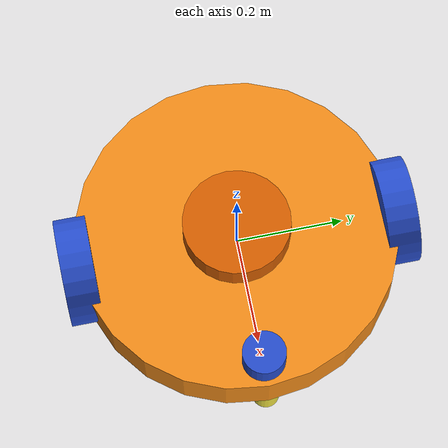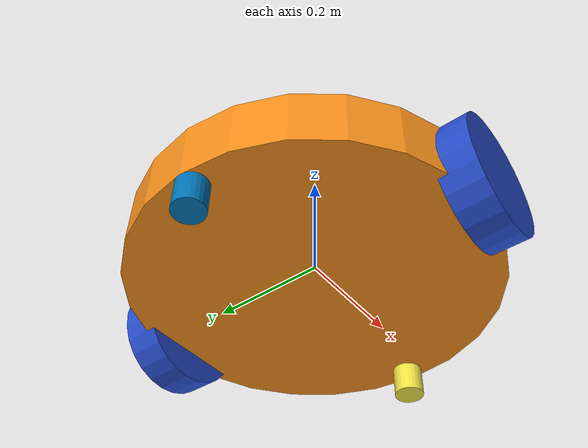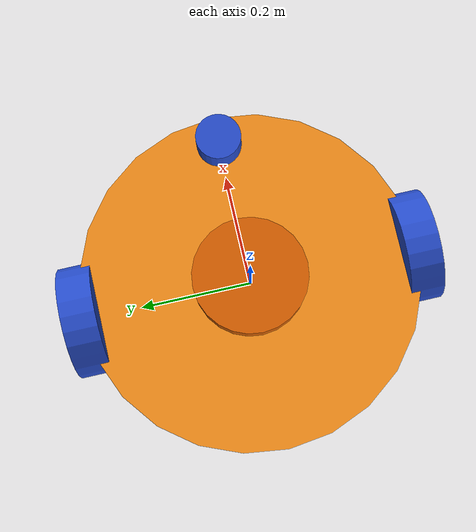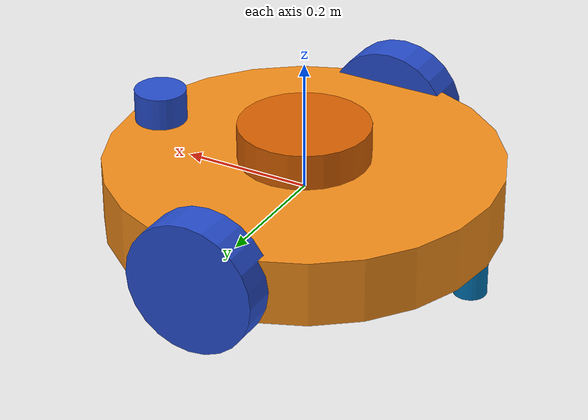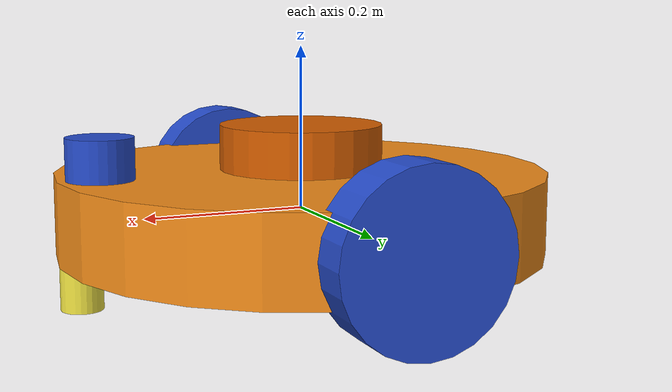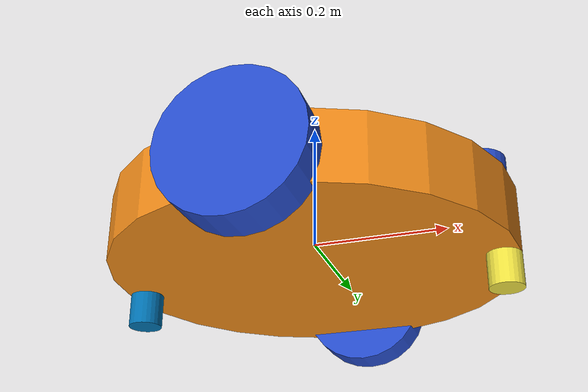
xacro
<?xml version="1.0" ?>
<robot name="yudhaan" xmlns:xacro="http://wiki.ros.org/xacro" >

  <!-- include the xacro files-->
  <xacro:include filename="$(find yudhaan_robot)/yudhaan_description/urdf/yudhaan.materials.xacro" />
  <xacro:include filename="$(find yudhaan_robot)/yudhaan_description/urdf/yudhaan.gazebo.xacro" />
  <xacro:include filename="$(find yudhaan_robot)/yudhaan_description/urdf/yudhaan.macro.xacro" />
  <xacro:include filename="$(find yudhaan_robot)/yudhaan_description/urdf/yudhaan.transmission.xacro" />

  <!-- Chasis defined here -->
  <xacro:link_cyl name="link_chassis" mass="30.0" r="0.3" l="0.1" origin_rpy="0.0 0.0 0.0" origin_xyz="0.0 0.0 0.0" />

  <!-- Create wheel right -->
  <xacro:link_cyl name="link_right_wheel" mass="3.0" r="0.1" l="0.06"  origin_rpy="0.0 1.5707 1.5707" origin_xyz="0.0 0.0 0.0" />
  <xacro:joint_cyl name="joint_right_wheel"  parent="link_chassis"  child="link_right_wheel"  origin_rpy="0.0 0.0 0.0"  origin_xyz="0.0 -0.3 0" axis_rpy="0 0 0" axis_xyz="0 1 0" type="continuous"/>

  <!-- Create wheel left -->
  <xacro:link_cyl name="link_left_wheel" mass="3.0" r="0.1" l="0.06" origin_rpy="0.0 1.5707 1.5707" origin_xyz="0.0 0.0 0.0" />
  <xacro:joint_cyl name="joint_left_wheel"  parent="link_chassis"  child="link_left_wheel"  origin_rpy="0.0 0.0 0.0"  origin_xyz="0.0 0.3 0" axis_rpy="0 0 0" axis_xyz="0 1 0" type="continuous" />

  <!-- Create support front -->
  <xacro:link_cyl name="link_front_support" mass="0.0" r="0.025" l="0.05" origin_rpy="0.0 0.0 0.0" origin_xyz="0.0 0.0 0.0" />
  <xacro:joint_cyl name="joint_front_support"  parent="link_chassis"  child="link_front_support"  origin_rpy="0.0 0.0 0.0"  origin_xyz="0.275 0.0 -0.075" axis_rpy="0 0 0" axis_xyz="0 0 0" type="fixed" />

  <!-- Create support rear -->
  <xacro:link_cyl name="link_rear_support" mass="0.0" r="0.025" l="0.05" origin_rpy="0.0 0.0 0.0" origin_xyz="0.0 0.0 0.0" />
  <xacro:joint_cyl name="joint_rear_support"  parent="link_chassis"  child="link_rear_support"  origin_rpy="0.0 0.0 0.0"  origin_xyz="-0.275 0.0 -0.075" axis_rpy="0 0 0" axis_xyz="0 0 0" type="fixed" />

<!-- Create robot support-->
  <xacro:link_cyl name="robot_support" mass="0.0" r="0.1" l="0.06" origin_rpy="0.0 0.0 0.0" origin_xyz="0.0 0.0 0.0" />
  <xacro:joint_cyl name="joint_robot_support"  parent="link_chassis"  child="robot_support"  origin_rpy="0.0 0.0 0.0"  origin_xyz="0.0 0.0 0.075" axis_rpy="0 0 0" axis_xyz="0 0 0" type="fixed" />

  <!-- Create laser sensor -->
  <xacro:link_cyl name="sensor_laser" mass="0.0" r="0.04" l="0.05" origin_rpy="0.0 0.0 0.0" origin_xyz="0.0 0.0 0.0" />
  <xacro:joint_cyl name="joint_sensor_laser"  parent="link_chassis"  child="sensor_laser"  origin_rpy="0.0 0.0 0.0"  origin_xyz="0.25 0.0 0.075" axis_rpy="0 0 0" axis_xyz="0 0 0" type="fixed" />

</robot>

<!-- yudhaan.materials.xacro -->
<robot name="yudhaan" xmlns:xacro="http://wiki.ros.org/xacro" >

  <material name="black">
    <color rgba="0.0 0.0 0.0 1.0"/>
  </material>
  <material name="blue">
    <color rgba="0.203125 0.23828125 0.28515625 1.0"/>
  </material>
  <material name="green">
    <color rgba="0.0 0.8 0.0 1.0"/>
  </material>
  <material name="grey">
    <color rgba="0.2 0.2 0.2 1.0"/>
  </material>
  <material name="orange">
    <color rgba="1.0 0.423529411765 0.0392156862745 1.0"/>
  </material>
  <material name="brown">
    <color rgba="0.870588235294 0.811764705882 0.764705882353 1.0"/>
  </material>
  <material name="red">
    <color rgba="0.80078125 0.12890625 0.1328125 1.0"/>
  </material>
  <material name="white">
    <color rgba="1.0 1.0 1.0 1.0"/>
  </material>
</robot>

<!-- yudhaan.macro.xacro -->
<robot xmlns:xacro="http://wiki.ros.org/xacro">
    <xacro:macro name="link_cyl" params="name mass r l origin_rpy origin_xyz">
        <link name="${name}">
            <inertial>
              <mass value="${mass}"/>
              <origin rpy="${origin_rpy}" xyz="${origin_xyz}"/>
              <inertia ixx="${mass*(3*r*r+l*l)/12}" ixy = "0" ixz = "0" iyy="${mass*(3*r*r+l*l)/12}" iyz = "0" izz="${mass*(r*r)/2}" />
            </inertial>
            <collision name="${name}_collision">
              <origin rpy="${origin_rpy}" xyz="${origin_xyz}"/>
              <geometry>
                <cylinder length="${l}" radius="${r}"/>
              </geometry>
            </collision>
            <visual name="${name}_visual">
              <origin rpy="${origin_rpy}" xyz="${origin_xyz}"/>
              <geometry>
                <cylinder length="${l}" radius="${r}"/>
              </geometry>
            </visual>
        </link>
    </xacro:macro>

    <xacro:macro name="joint_cyl" params="name parent child origin_rpy origin_xyz axis_rpy axis_xyz type">
      <joint name="${name}" type="${type}">
        <origin rpy="${origin_rpy}" xyz="${origin_xyz}"/>
        <child link="${child}"/>
        <parent link="${parent}"/>
        <axis rpy="${axis_rpy}" xyz="${axis_xyz}"/>
        <limit effort="10000" velocity="1000"/>
      </joint>
    </xacro:macro>
</robot>
